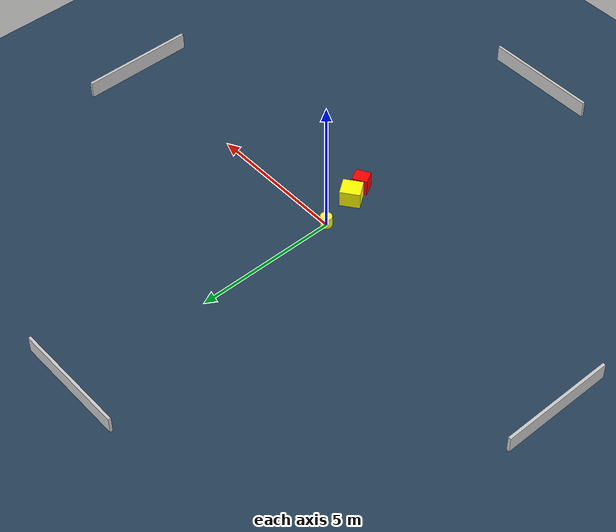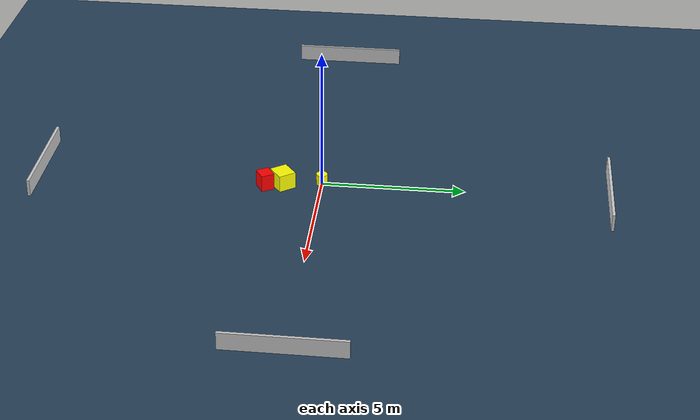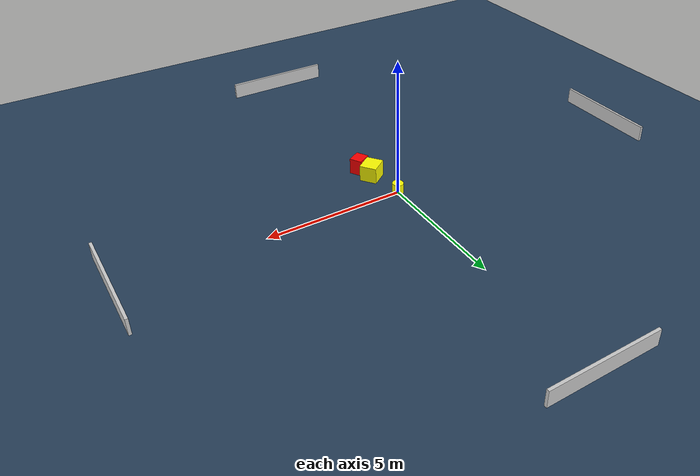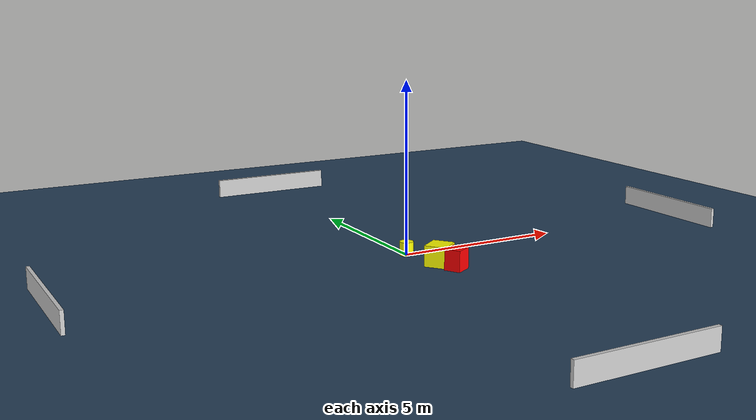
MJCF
<?xml version="1.0" ?>
<mujoco model="generated_environment">
  <option timestep="0.01" integrator="RK4" cone="elliptic"/>
  <default>
    <geom density="1"/>
  </default>
  <asset>
    <texture builtin="gradient" height="3072" name="skybox" rgb1="0.3 0.5 0.7" rgb2="0 0 0" type="skybox" width="512"/>
    <texture builtin="checker" height="300" name="groundplane" rgb1="0.2 0.3 0.4" rgb2="0.1 0.2 0.3" type="2d" width="300"/>
    <material name="groundplane" reflectance="0.2" texrepeat="5 5" texture="groundplane"/>
  </asset>
  <worldbody>
    <light dir="0 0 -1" directional="true" pos="0 0 1.5"/>
    <geom condim="3" friction="0.5 0.005 0.001" material="groundplane" name="floor" pos="0 0 0" size="0 0 0.05" type="plane"/>
    <body name="walls">
      <geom name="wall_1" condim="4" pos="-10.0 0.0 0.3" rgba="0.800000011920929 0.800000011920929 0.800000011920929 1.0" size="0.05 2.0 0.3" type="box"/>
      <geom name="wall_2" condim="4" pos="10.0 0.0 0.3" rgba="0.800000011920929 0.800000011920929 0.800000011920929 1.0" size="0.05 2.0 0.3" type="box"/>
      <geom name="wall_3" condim="4" pos="0.0 -10.0 0.3" rgba="0.800000011920929 0.800000011920929 0.800000011920929 1.0" size="2.0 0.05 0.3" type="box"/>
      <geom name="wall_4" condim="4" pos="0.0 10.0 0.3" rgba="0.800000011920929 0.800000011920929 0.800000011920929 1.0" size="2.0 0.05 0.3" type="box"/>
    </body>
    <body name="robot">
      <joint name="joint_x" type="slide" pos="0 0 0" axis="1 0 0"/>
      <joint name="joint_y" type="slide" pos="0 0 0" axis="0 1 0"/>
      <geom name="robot" type="cylinder" pos="0.0 0.0 0.2" size="0.2 0.2 0.0" mass="5.0" friction="1.0 0.005 0.0001" condim="4" rgba="1.0 1.0 0.0 1.0"/>
    </body>
    <body name="obstacle_1_movable">
      <geom name="obstacle_1_movable" condim="4" pos="0.27939940905117766 -1.3478583696209847 0.3" euler="0 0 306.38951641670593" friction="0.0 0.005 0.001" rgba="1.0 1.0 0.0 1.0" size="0.3152050535202745 0.345030553689133 0.3" type="box" mass="0.1"/>
      <joint type="free"/>
    </body>
    <body name="obstacle_2_static">
      <geom name="obstacle_2_static" condim="4" pos="0.45312187004159665 -1.9475072631115462 0.3" euler="0 0 30.099259804786826" friction="0.0 0.005 0.001" rgba="1.0 0.0 0.0 1.0" size="0.25960440838234355 0.2347028753115754 0.3" type="box"/>
    </body>
  </worldbody>
  <actuator>
    <motor name="actuator_x" joint="joint_x" gear="1" ctrlrange="-1 1"/>
    <motor name="actuator_y" joint="joint_y" gear="1" ctrlrange="-1 1"/>
  </actuator>
</mujoco>
